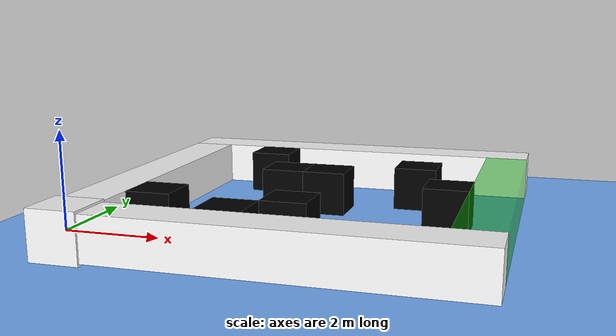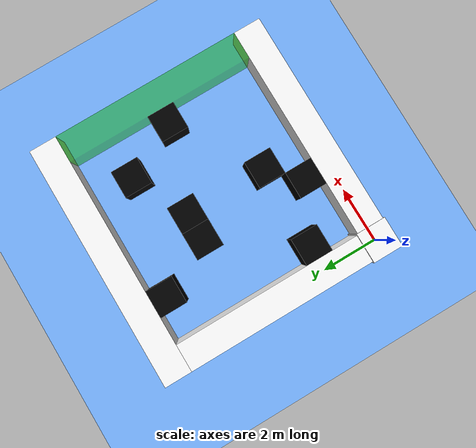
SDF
<?xml version="1.0" ?>
<sdf version='1.6'>
<world name='world'>
    <physics type="ode2">
      <max_step_size>0.004</max_step_size>
      <max_contacts>5</max_contacts>
      <ode>
        <solver>
          <iters>25</iters>
          <type>world</type>
          <sor>1.3</sor>
          <use_dynamic_moi_rescaling>0</use_dynamic_moi_rescaling>
        </solver>
        <constraints>
          <cfm>0.0</cfm>
          <contact_surface_layer>0.0</contact_surface_layer>
        </constraints>
      </ode>
    </physics>

    <include>
      <uri>model://RocksampleRobot</uri>
      <pose>0.0 0.0 0.0 0 0 0</pose>
    </include>

  <model name="floor">
      <pose frame=''>0 0 -0.75 0 0 0</pose>
      <static>1</static>
      <link name="floorlink">
      <visual name="floorvisual">
        <geometry>
          <box>
            <size>100 100 0.005</size>
          </box>
        </geometry>
        <material>
            <ambient>0.46274509803921568627 0.6980392156862745098 1 1.0</ambient>
          </material>
      </visual>
    </link>
  </model>

  <model name="Goal">
      <pose frame=''>8 4 0 0 0 0</pose>
      <static>1</static>
      <link name="Goal1link">
      <visual name="Goal1visual">
        <geometry>
          <box>
            <size>1 7 1</size>
          </box>
        </geometry>
        <material>
          <ambient>0 0.7 0 0.5</ambient>
        </material>
      </visual>
    </link>
  </model>

  <model name="Border1">
      <pose frame=''>0 4 0 0 0 0</pose>
      <static>1</static>
      <link name="Border1link">
      <visual name="Border1visual">
        <geometry>
          <box>
            <size>1 7 1</size>
          </box>
        </geometry>
        <material>
          <ambient>1 1 1 1</ambient>
        </material>
      </visual>
    </link>
  </model>

  <model name="Border2">
      <pose frame=''>4 8 0 0 0 0</pose>
      <static>1</static>
      <link name="Border2link">
      <visual name="Border2visual">
        <geometry>
          <box>
            <size>9 1 1</size>
          </box>
        </geometry>
        <material>
          <ambient>1 1 1 1</ambient>
        </material>
      </visual>
    </link>
  </model>

  <model name="Border3">
      <pose frame=''>4 0 0 0 0 0</pose>
      <static>1</static>
      <link name="Border3link">
      <visual name="Border3visual">
        <geometry>
          <box>
            <size>9 1 1</size>
          </box>
        </geometry>
        <material>
          <ambient>1 1 1 1</ambient>
        </material>
      </visual>
    </link>
  </model>

  <model name="rock1">
      <pose frame=''>2 7 0 0 0 0</pose>
      <static>1</static>
      <link name="rock1link">
      <visual name="rock1visual">
        <geometry>
          <box>
            <size>1 1 1</size>
          </box>
        </geometry>
        <material>
          <ambient>0 0 0 1.0</ambient>
        </material>
      </visual>
      <collision name="rock1collision">
        <geometry>
          <box>
            <size>1 1 1</size>
          </box>
        </geometry>
      </collision>
    </link>
  </model>

  <model name="rock2">
      <pose frame=''>6 6 0 0 0 0</pose>
      <static>1</static>
      <link name="rock2link">
      <visual name="rock2visual">
        <geometry>
          <box>
            <size>1 1 1</size>
          </box>
        </geometry>
        <material>
          <ambient>0 0 0 1.0</ambient>
        </material>
      </visual>
      <collision name="rock2collision">
        <geometry>
          <box>
            <size>1 1 1</size>
          </box>
        </geometry>
      </collision>
    </link>
  </model>

  <model name="rock3">
      <pose frame=''>3 5 0 0 0 0</pose>
      <static>1</static>
      <link name="rock3link">
      <visual name="rock3visual">
        <geometry>
          <box>
            <size>1 1 1</size>
          </box>
        </geometry>
        <material>
          <ambient>0 0 0 1.0</ambient>
        </material>
      </visual>
      <collision name="rock3collision">
        <geometry>
          <box>
            <size>1 1 1</size>
          </box>
        </geometry>
      </collision>
    </link>
  </model>

  <model name="rock4">
      <pose frame=''>4 5 0 0 0 0</pose>
      <static>1</static>
      <link name="rock4link">
      <visual name="rock4visual">
        <geometry>
          <box>
            <size>1 1 1</size>
          </box>
        </geometry>
        <material>
          <ambient>0 0 0 1.0</ambient>
        </material>
      </visual>
      <collision name="rock4collision">
        <geometry>
          <box>
            <size>1 1 1</size>
          </box>
        </geometry>
      </collision>
    </link>
  </model>

  <model name="rock5">
      <pose frame=''>7 4 0 0 0 0</pose>
      <static>1</static>
      <link name="rock5link">
      <visual name="rock5visual">
        <geometry>
          <box>
            <size>1 1 1</size>
          </box>
        </geometry>
        <material>
          <ambient>0 0 0 1.0</ambient>
        </material>
      </visual>
      <collision name="rock5collision">
        <geometry>
          <box>
            <size>1 1 1</size>
          </box>
        </geometry>
      </collision>
    </link>
  </model>

  <model name="rock6">
      <pose frame=''>1 2 0 0 0 0</pose>
      <static>1</static>
      <link name="rock6link">
      <visual name="rock6visual">
        <geometry>
          <box>
            <size>1 1 1</size>
          </box>
        </geometry>
        <material>
          <ambient>0 0 0 1.0</ambient>
        </material>
      </visual>
      <collision name="rock6collision">
        <geometry>
          <box>
            <size>1 1 1</size>
          </box>
        </geometry>
      </collision>
    </link>
  </model>

  <model name="rock7">
      <pose frame=''>4 2 0 0 0 0</pose>
      <static>1</static>
      <link name="rock7link">
      <visual name="rock7visual">
        <geometry>
          <box>
            <size>1 1 1</size>
          </box>
        </geometry>
        <material>
          <ambient>0 0 0 1.0</ambient>
        </material>
      </visual>
      <collision name="rock7collision">
        <geometry>
          <box>
            <size>1 1 1</size>
          </box>
        </geometry>
      </collision>
    </link>
  </model>

  <model name="rock8">
      <pose frame=''>3 1 0 0 0 0</pose>
      <static>1</static>
      <link name="rock8link">
      <visual name="rock8visual">
        <geometry>
          <box>
            <size>1 1 1</size>
          </box>
        </geometry>
        <material>
          <ambient>0 0 0 1.0</ambient>
        </material>
      </visual>
      <collision name="rock8collision">
        <geometry>
          <box>
            <size>1 1 1</size>
          </box>
        </geometry>
      </collision>
    </link>
  </model>
</world>
</sdf>

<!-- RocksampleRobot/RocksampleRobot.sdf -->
<sdf version='1.6'>
<model name="RocksampleRobot">
   <pose frame=''>0 0 0 0 0 0</pose>
   <static>1</static>
   <link name="RocksampleLink">
     <visual name="RocksampleLinkVisual">
        <geometry>
          <box>
            <size>1.1 1.1 1.1</size>
          </box>
        </geometry>
        <material>
          <ambient>1 1 1 1.0</ambient>
        </material>
      </visual>
      <collision name="RocksampleLinkCollision">
        <geometry>
          <box>
            <size>1 1 1</size>
          </box>
        </geometry>
      </collision>
    </link>
  </model>
</sdf>
